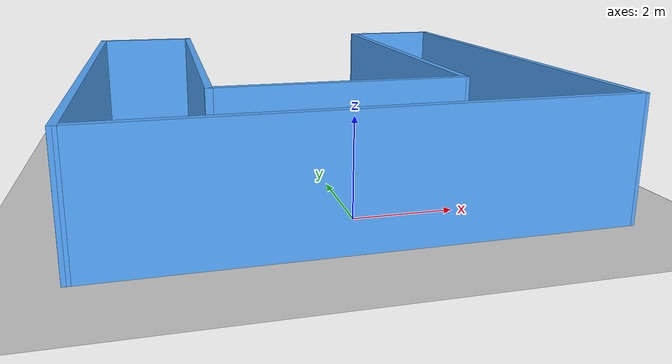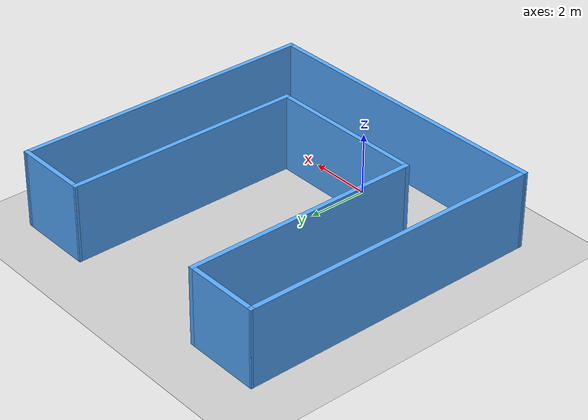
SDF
<sdf version="1.6">
 <world name="default">
  <light name="sun" type="directional">
   <pose>0 0 15 0 -0 0</pose>
   <diffuse>1 1 1 1</diffuse>
   <specular>0.1 0.1 0.1 1</specular>
   <attenuation>
    <range>1000</range>
    <constant>0.9</constant>
    <linear>0.01</linear>
    <quadratic>0.001</quadratic>
   </attenuation>
   <direction>-0.5 0.5 -1</direction>
  </light>
  <model name="ground_plane">
   <static>1</static>
   <link name="link">
    <collision name="collision">
     <geometry><plane><normal>0 0 1</normal><size>100 100</size></plane></geometry>
     <surface><friction><ode><mu>100</mu><mu2>50</mu2></ode></friction></surface>
    </collision>
    <visual name="visual">
     <cast_shadows>0</cast_shadows>
     <geometry><plane><normal>0 0 1</normal><size>100 100</size></plane></geometry>
     <material>
      <script><uri>file://media/materials/scripts/gazebo.material</uri><name>Gazebo/Grey</name></script>
     </material>
    </visual>
   </link>
  </model>
  <gravity>0 0 -9.8</gravity>
  <magnetic_field>6e-06 2.3e-05 -4.2e-05</magnetic_field>
  <atmosphere type="adiabatic"/>
  <physics name="default_physics" default="0" type="ode">
   <max_step_size>0.001</max_step_size>
   <real_time_factor>1</real_time_factor>
   <real_time_update_rate>1000</real_time_update_rate>
  </physics>
  <scene><ambient>0.4 0.4 0.4 1</ambient><background>0.7 0.7 0.7 1</background><shadows>1</shadows></scene>
  <spherical_coordinates>
   <surface_model>EARTH_WGS84</surface_model>
   <latitude_deg>0</latitude_deg>
   <longitude_deg>0</longitude_deg>
   <elevation>0</elevation>
   <heading_deg>0</heading_deg>
  </spherical_coordinates>
  <model name="home_service">
   <pose>-0.027625 3.5 0 0 -0 0</pose>
   <link name="Wall_11">
    <collision name="Wall_11_Collision">
     <geometry><box><size>10 0.15 2.5</size></box></geometry>
     <pose>0 0 1.25 0 -0 0</pose>
    </collision>
    <visual name="Wall_11_Visual">
     <pose>0 0 1.25 0 -0 0</pose>
     <geometry><box><size>10 0.15 2.5</size></box></geometry>
     <material>
      <script><uri>file://media/materials/scripts/gazebo.material</uri><name>Gazebo/Grey</name></script>
      <ambient>0.333333 0.666667 1 1</ambient>
     </material>
    </visual>
    <pose>-4.90888 -0.02986 0 0 0 -1.57557</pose>
   </link>
   <link name="Wall_12">
    <collision name="Wall_12_Collision">
     <geometry><box><size>10 0.15 2.5</size></box></geometry>
     <pose>0 0 1.25 0 -0 0</pose>
    </collision>
    <visual name="Wall_12_Visual">
     <pose>0 0 1.25 0 -0 0</pose>
     <geometry><box><size>10 0.15 2.5</size></box></geometry>
     <material>
      <script><uri>file://media/materials/scripts/gazebo.material</uri><name>Gazebo/Grey</name></script>
      <ambient>0.333333 0.666667 1 1</ambient>
     </material>
    </visual>
    <pose>-0.007375 -4.92486 0 0 -0 0.006091</pose>
   </link>
   <link name="Wall_13">
    <collision name="Wall_13_Collision">
     <geometry><box><size>10 0.15 2.5</size></box></geometry>
     <pose>0 0 1.25 0 -0 0</pose>
    </collision>
    <visual name="Wall_13_Visual">
     <pose>0 0 1.25 0 -0 0</pose>
     <geometry><box><size>10 0.15 2.5</size></box></geometry>
     <material>
      <script><uri>file://media/materials/scripts/gazebo.material</uri><name>Gazebo/Grey</name></script>
      <ambient>0.333333 0.666667 1 1</ambient>
     </material>
    </visual>
    <pose>4.92513 0.03014 0 0 -0 1.56927</pose>
   </link>
   <link name="Wall_14">
    <collision name="Wall_14_Collision">
     <geometry><box><size>2.5 0.15 2.5</size></box></geometry>
     <pose>0 0 1.25 0 -0 0</pose>
    </collision>
    <visual name="Wall_14_Visual">
     <pose>0 0 1.25 0 -0 0</pose>
     <geometry><box><size>2.5 0.15 2.5</size></box></geometry>
     <material>
      <script><uri>file://media/materials/scripts/gazebo.material</uri><name>Gazebo/Grey</name></script>
      <ambient>0.333333 0.666667 1 1</ambient>
     </material>
    </visual>
    <pose>3.75762 4.95514 0 0 -0 3.14159</pose>
   </link>
   <link name="Wall_15">
    <collision name="Wall_15_Collision">
     <geometry><box><size>7.81002 0.15 2.5</size></box></geometry>
     <pose>0 0 1.25 0 -0 0</pose>
    </collision>
    <visual name="Wall_15_Visual">
     <pose>0 0 1.25 0 -0 0</pose>
     <geometry><box><size>7.81002 0.15 2.5</size></box></geometry>
     <material>
      <script><uri>file://media/materials/scripts/gazebo.material</uri><name>Gazebo/Grey</name></script>
      <ambient>0.333333 0.666667 1 1</ambient>
     </material>
    </visual>
    <pose>2.57362 1.12514 0 0 0 -1.57315</pose>
   </link>
   <link name="Wall_16">
    <collision name="Wall_16_Collision">
     <geometry><box><size>5.25 0.15 2.5</size></box></geometry>
     <pose>0 0 1.25 0 -0 0</pose>
    </collision>
    <visual name="Wall_16_Visual">
     <pose>0 0 1.25 0 -0 0</pose>
     <geometry><box><size>5.25 0.15 2.5</size></box></geometry>
     <material>
      <script><uri>file://media/materials/scripts/gazebo.material</uri><name>Gazebo/Grey</name></script>
      <ambient>0.333333 0.666667 1 1</ambient>
     </material>
    </visual>
    <pose>0.014625 -2.70486 0 0 -0 3.14159</pose>
   </link>
   <link name="Wall_17">
    <collision name="Wall_17_Collision">
     <geometry><box><size>7.75 0.15 2.5</size></box></geometry>
     <pose>0 0 1.25 0 -0 0</pose>
    </collision>
    <visual name="Wall_17_Visual">
     <pose>0 0 1.25 0 -0 0</pose>
     <geometry><box><size>7.75 0.15 2.5</size></box></geometry>
     <material>
      <script><uri>file://media/materials/scripts/gazebo.material</uri><name>Gazebo/Grey</name></script>
      <ambient>0.333333 0.666667 1 1</ambient>
     </material>
    </visual>
    <pose>-2.53538 1.09514 0 0 -0 1.5708</pose>
   </link>
   <link name="Wall_18">
    <collision name="Wall_18_Collision">
     <geometry><box><size>2.5 0.15 2.5</size></box></geometry>
     <pose>0 0 1.25 0 -0 0</pose>
    </collision>
    <visual name="Wall_18_Visual">
     <pose>0 0 1.25 0 -0 0</pose>
     <geometry><box><size>2.5 0.15 2.5</size></box></geometry>
     <material>
      <script><uri>file://media/materials/scripts/gazebo.material</uri><name>Gazebo/Grey</name></script>
      <ambient>0.333333 0.666667 1 1</ambient>
     </material>
    </visual>
    <pose>-3.71037 4.89514 0 0 -0 3.14159</pose>
   </link>
   <static>1</static>
  </model>
 </world>
</sdf>
